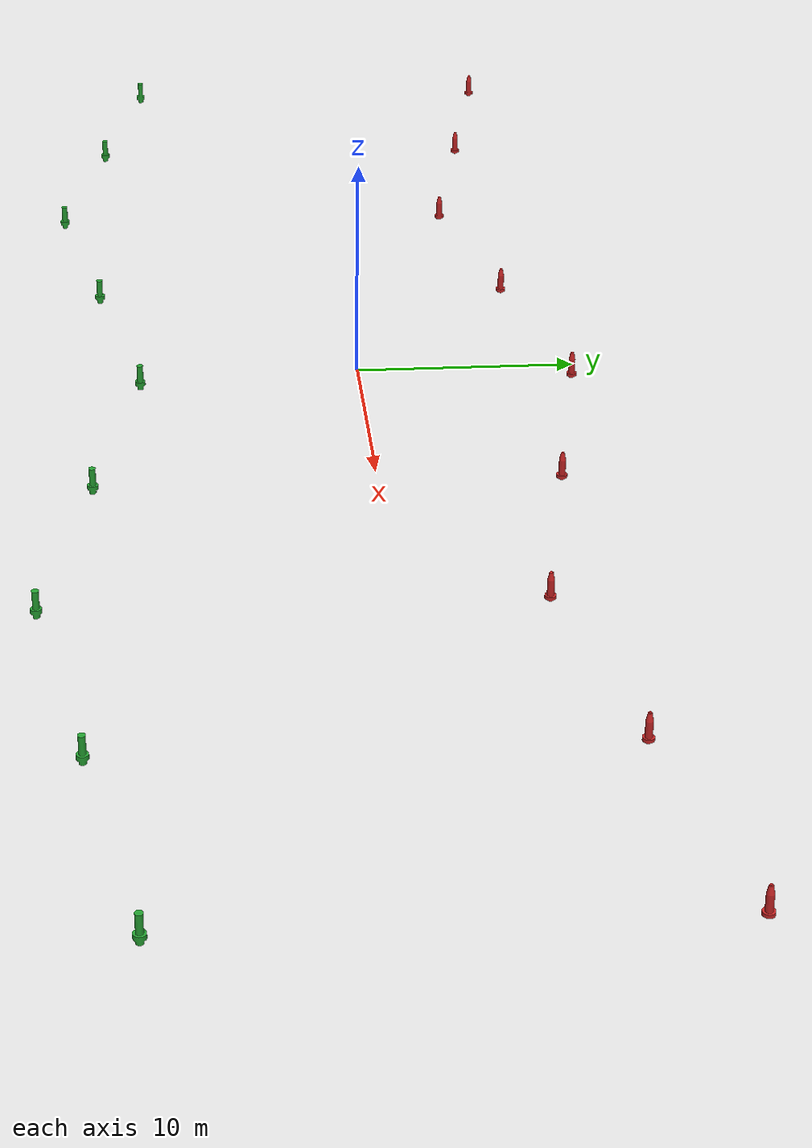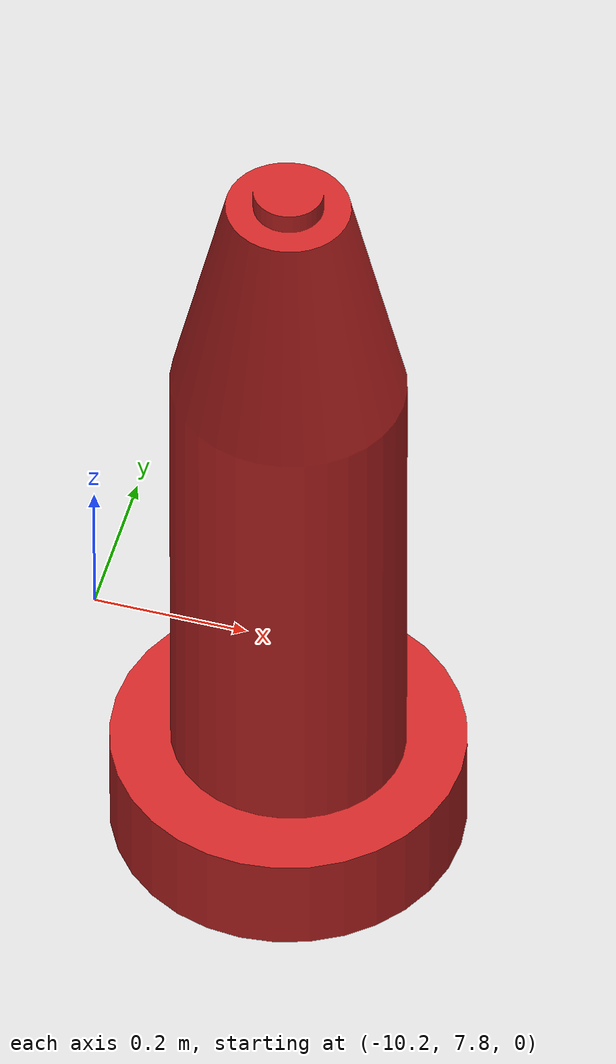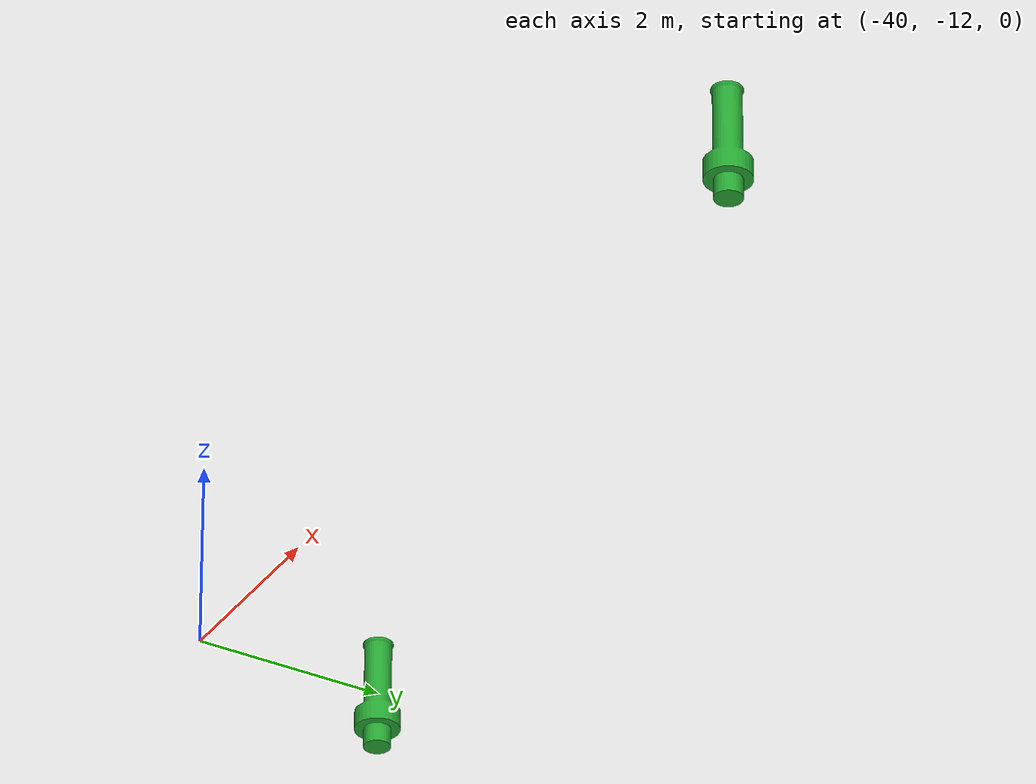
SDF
<?xml version="1.0"?>
<sdf version="1.6">
  <model name="robotx_navigation_challenge_wide">
      <include>
        <name>gate_red_9</name>
        <pose>-40 10 0 0 0 0 </pose>
        <uri>model://surmark950410</uri>
      </include>
      <include>
        <name>gate_red_8</name>
        <pose>-30 8 0 0 0 0 </pose>
        <uri>model://surmark950410</uri>
      </include>
      <include>
        <name>gate_red_7</name>
        <pose>-20 6 0 0 0 0 </pose>
        <uri>model://surmark950410</uri>
      </include>
      <include>
        <name>gate_red_6</name>
        <pose>-10 8 0 0 0 0 </pose>
        <uri>model://surmark950410</uri>
      </include>
      <include>
        <name>gate_red_5</name>
        <pose>0 10 0 0 0 0 </pose>
        <uri>model://surmark950410</uri>
      </include>
      <include>
        <name>gate_red_4</name>
        <pose>10 8 0 0 0 0 </pose>
        <uri>model://surmark950410</uri>
      </include>
      <include>
        <name>gate_red_3</name>
        <pose>20 6 0 0 0 0 </pose>
        <uri>model://surmark950410</uri>
      </include>
      <include>
        <name>gate_red_2</name>
        <pose>30 8 0 0 0 0 </pose>
        <uri>model://surmark950410</uri>
      </include>
      <include>
        <name>gate_red_1</name>
        <pose>40 10 0 0 0 0 </pose>
        <uri>model://surmark950410</uri>
      </include>
      <include>
        <name>gate_green_9</name>
        <pose>-40 -10 0 0 0 0 </pose>
        <uri>model://surmark950400</uri>
      </include>
      <include>
        <name>gate_green_8</name>
        <pose>-30 -12 0 0 0 0 </pose>
        <uri>model://surmark950400</uri>
      </include>
      <include>
        <name>gate_green_7</name>
        <pose>-20 -14 0 0 0 0 </pose>
        <uri>model://surmark950400</uri>
      </include>
      <include>
        <name>gate_green_6</name>
        <pose>-10 -12 0 0 0 0 </pose>
        <uri>model://surmark950400</uri>
      </include>
      <include>
        <name>gate_green_5</name>
        <pose>0 -10 0 0 0 0 </pose>
        <uri>model://surmark950400</uri>
      </include>
      <include>
        <name>gate_green_4</name>
        <pose>10 -12 0 0 0 0 </pose>
        <uri>model://surmark950400</uri>
      </include>
      <include>
        <name>gate_green_3</name>
        <pose>20 -14 0 0 0 0 </pose>
        <uri>model://surmark950400</uri>
      </include>
      <include>
        <name>gate_green_2</name>
        <pose>30 -12 0 0 0 0 </pose>
        <uri>model://surmark950400</uri>
      </include>
      <include>
        <name>gate_green_1</name>
        <pose>40 -10 0 0 0 0 </pose>
        <uri>model://surmark950400</uri>
      </include>
  </model>
</sdf>

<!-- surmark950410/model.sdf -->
<sdf version="1.6">
  <model name="surmark950410">
    <link name="link">
      <inertial>
        <pose>0 0 -2 0 0 0</pose>
        <!-- Mass determined based on buoyancy geometry so object
             floats at mid-point of sphere -->
        <mass>25</mass>
        <!-- Mark only - based on cylinder -->
        <inertia>
          <ixx>1.0</ixx>
          <ixy>0</ixy>
          <ixz>0</ixz>
          <iyy>1.0</iyy>
          <iyz>0</iyz>
          <izz>0.1</izz>
        </inertia>
      </inertial>
      <visual name="visual">
        <geometry>
	        <mesh><uri>model://surmark950410/mesh/surmark950410.dae</uri></mesh>
        </geometry>
        <material>
          <script>
            <uri>model://surmark950410/materials/scripts/surmark950410.material</uri>
            <name>surmark950410/Red</name>
          </script>
        </material>
      </visual>
    </link>

    <plugin name="BuoyancyPlugin" filename="libbuoyancy_gazebo_plugin.so">
      <wave_model>ocean_waves</wave_model>
      <fluid_density>1000</fluid_density>
      <fluid_level>0.0</fluid_level>
      <linear_drag>25.0</linear_drag>
      <angular_drag>2.0</angular_drag>
      <buoyancy name="buoyancy_sphere">
        <link_name>link</link_name>
        <pose>0 0 -0.48 0 0 0</pose>
        <geometry>
          <sphere>
            <radius>0.23</radius>
          </sphere>
        </geometry>
      </buoyancy>
    </plugin>

  </model>
</sdf>

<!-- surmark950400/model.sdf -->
<sdf version="1.6">
  <model name="surmark950400">
    <link name="link">
      <inertial>
        <pose>0 0 -2 0 0 0</pose>
        <!-- Mass determined based on buoyancy geometry so object
             floats at mid-point of sphere -->
        <mass>25</mass>
        <!-- Mark only - based on cylinder -->
        <inertia>
          <ixx>1.0</ixx>
          <ixy>0</ixy>
          <ixz>0</ixz>
          <iyy>1.0</iyy>
          <iyz>0</iyz>
          <izz>0.1</izz>
        </inertia>
      </inertial>
      <visual name="visual">
        <geometry>
	        <mesh><uri>model://surmark950400/mesh/surmark950400.dae</uri></mesh>
        </geometry>
        <material>
          <script>
            <uri>model://surmark950400/materials/scripts/surmark950400.material</uri>
            <name>surmark950400/Green</name>
          </script>
        </material>
      </visual>
    </link>

    <plugin name="BuoyancyPlugin" filename="libbuoyancy_gazebo_plugin.so">
      <wave_model>ocean_waves</wave_model>
      <fluid_density>1000</fluid_density>
      <fluid_level>0.0</fluid_level>
      <linear_drag>25.0</linear_drag>
      <angular_drag>2.0</angular_drag>
      <buoyancy name="buoyancy_sphere">
        <link_name>link</link_name>
        <pose>0 0 -0.31 0 0 0</pose>
        <geometry>
          <sphere>
            <radius>0.23</radius>
          </sphere>
        </geometry>
      </buoyancy>
    </plugin>

  </model>
</sdf>
